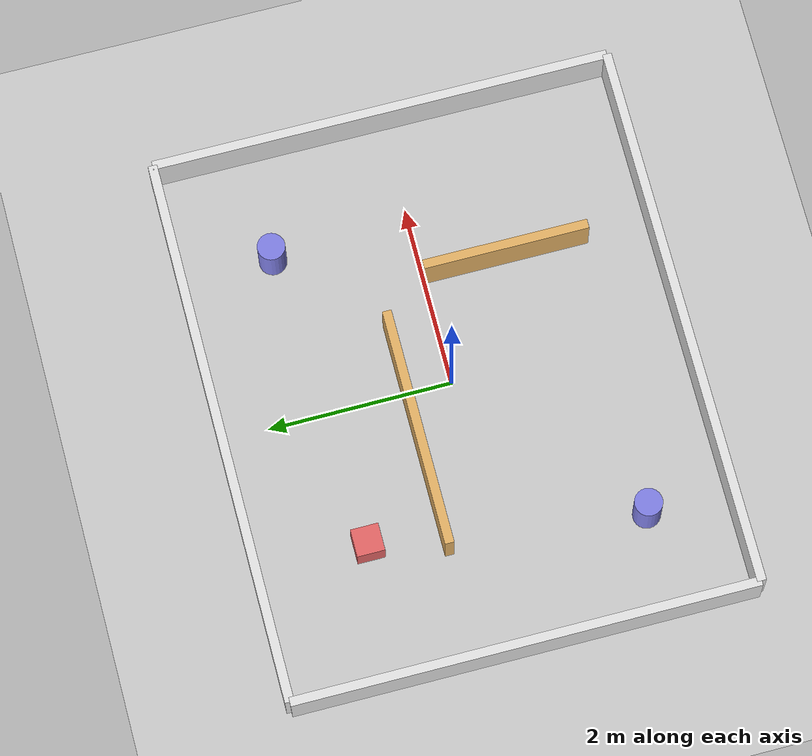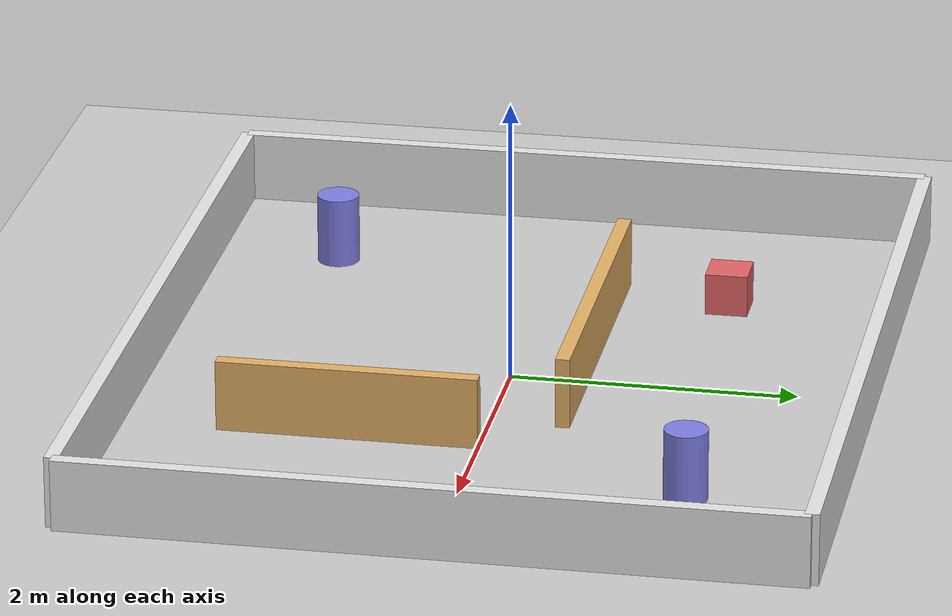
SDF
<?xml version="1.0" ?>
<sdf version="1.6">
  <world name="navbot_room">

    <!-- ======================================================================
         物理引擎
         ====================================================================== -->
    <physics type="ode">
      <max_step_size>0.001</max_step_size>
      <real_time_factor>1.0</real_time_factor>
      <real_time_update_rate>1000</real_time_update_rate>
    </physics>

    <!-- ======================================================================
         光照 + 地面
         ====================================================================== -->
    <include>
      <uri>model://sun</uri>
    </include>

    <include>
      <uri>model://ground_plane</uri>
    </include>

    <model name="wall_north">
      <static>true</static>
      <pose>0 2.5 0.25 0 0 0</pose>
      <link name="link">
        <collision name="collision">
          <geometry><box><size>6.0 0.1 0.5</size></box></geometry>
        </collision>
        <visual name="visual">
          <geometry><box><size>6.0 0.1 0.5</size></box></geometry>
          <material><ambient>0.7 0.7 0.7 1</ambient><diffuse>0.9 0.9 0.9 1</diffuse></material>
        </visual>
      </link>
    </model>

    <model name="wall_south">
      <static>true</static>
      <pose>0 -2.5 0.25 0 0 0</pose>
      <link name="link">
        <collision name="collision">
          <geometry><box><size>6.0 0.1 0.5</size></box></geometry>
        </collision>
        <visual name="visual">
          <geometry><box><size>6.0 0.1 0.5</size></box></geometry>
          <material><ambient>0.7 0.7 0.7 1</ambient><diffuse>0.9 0.9 0.9 1</diffuse></material>
        </visual>
      </link>
    </model>

    <model name="wall_east">
      <static>true</static>
      <pose>3.0 0 0.25 0 0 0</pose>
      <link name="link">
        <collision name="collision">
          <geometry><box><size>0.1 5.0 0.5</size></box></geometry>
        </collision>
        <visual name="visual">
          <geometry><box><size>0.1 5.0 0.5</size></box></geometry>
          <material><ambient>0.7 0.7 0.7 1</ambient><diffuse>0.9 0.9 0.9 1</diffuse></material>
        </visual>
      </link>
    </model>

    <model name="wall_west">
      <static>true</static>
      <pose>-3.0 0 0.25 0 0 0</pose>
      <link name="link">
        <collision name="collision">
          <geometry><box><size>0.1 5.0 0.5</size></box></geometry>
        </collision>
        <visual name="visual">
          <geometry><box><size>0.1 5.0 0.5</size></box></geometry>
          <material><ambient>0.7 0.7 0.7 1</ambient><diffuse>0.9 0.9 0.9 1</diffuse></material>
        </visual>
      </link>
    </model>

    <!-- ======================================================================
         内部隔断：造出「窄通道」和「闭环」
         ====================================================================== -->
    <model name="partition_mid">
      <static>true</static>
      <pose>-0.5 0.5 0.25 0 0 0</pose>
      <link name="link">
        <collision name="collision">
          <geometry><box><size>2.6 0.1 0.5</size></box></geometry>
        </collision>
        <visual name="visual">
          <geometry><box><size>2.6 0.1 0.5</size></box></geometry>
          <material><ambient>0.8 0.6 0.3 1</ambient><diffuse>0.9 0.7 0.4 1</diffuse></material>
        </visual>
      </link>
    </model>

    <!-- 短隔断：和 partition_mid 之间留出约 0.6m 的通道
         ★ 0.6m 是刻意选的：车宽 0.24m + 两侧各留 0.18m 余量，
           刚好能过，但代价地图膨胀半径设大了就过不去 —— 这就是这个房间的考点。 -->
    <model name="partition_short">
      <static>true</static>
      <pose>1.2 -0.9 0.25 0 0 0</pose>
      <link name="link">
        <collision name="collision">
          <geometry><box><size>0.1 1.8 0.5</size></box></geometry>
        </collision>
        <visual name="visual">
          <geometry><box><size>0.1 1.8 0.5</size></box></geometry>
          <material><ambient>0.8 0.6 0.3 1</ambient><diffuse>0.9 0.7 0.4 1</diffuse></material>
        </visual>
      </link>
    </model>

    <model name="pillar_a">
      <static>true</static>
      <pose>1.8 1.5 0.25 0 0 0</pose>
      <link name="link">
        <collision name="collision">
          <geometry><cylinder><radius>0.15</radius><length>0.5</length></cylinder></geometry>
        </collision>
        <visual name="visual">
          <geometry><cylinder><radius>0.15</radius><length>0.5</length></cylinder></geometry>
          <material><ambient>0.4 0.4 0.8 1</ambient><diffuse>0.5 0.5 0.9 1</diffuse></material>
        </visual>
      </link>
    </model>

    <model name="pillar_b">
      <static>true</static>
      <pose>-1.9 -1.6 0.25 0 0 0</pose>
      <link name="link">
        <collision name="collision">
          <geometry><cylinder><radius>0.15</radius><length>0.5</length></cylinder></geometry>
        </collision>
        <visual name="visual">
          <geometry><cylinder><radius>0.15</radius><length>0.5</length></cylinder></geometry>
          <material><ambient>0.4 0.4 0.8 1</ambient><diffuse>0.5 0.5 0.9 1</diffuse></material>
        </visual>
      </link>
    </model>

    <model name="movable_box">
      <pose>-1.5 1.3 0.15 0 0 0</pose>
      <link name="link">
        <collision name="collision">
          <geometry><box><size>0.3 0.3 0.3</size></box></geometry>
        </collision>
        <visual name="visual">
          <geometry><box><size>0.3 0.3 0.3</size></box></geometry>
          <material><ambient>0.8 0.3 0.3 1</ambient><diffuse>0.9 0.4 0.4 1</diffuse></material>
        </visual>
        <inertial>
          <mass>1.0</mass>
          <inertia><ixx>0.015</ixx><iyy>0.015</iyy><izz>0.015</izz>
                   <ixy>0</ixy><ixz>0</ixz><iyz>0</iyz></inertia>
        </inertial>
      </link>
    </model>

  </world>
</sdf>
